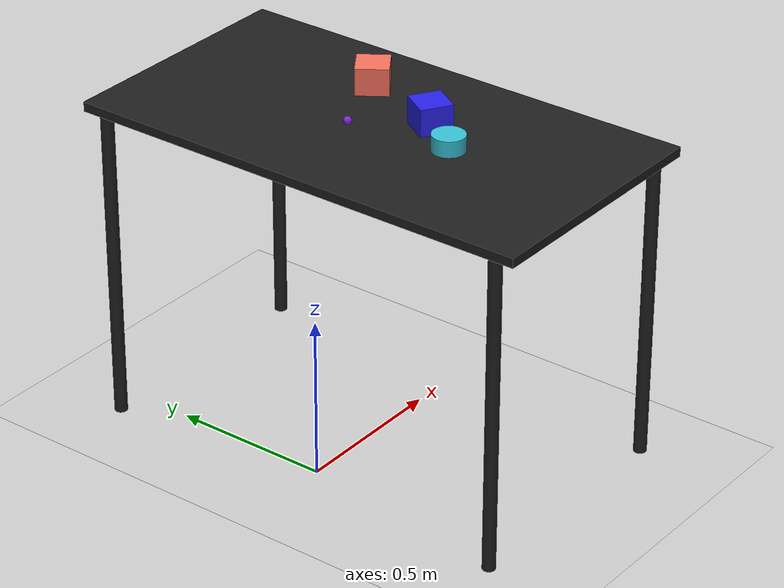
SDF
<?xml version="1.0" ?>
<sdf version="1.6">
  <world name="arm_world">
    <plugin filename="gz-sim-physics-system" name="gz::sim::systems::Physics">
      <engine>
        <filename>libgz-physics-bullet-featherstone-plugin.so</filename>
      </engine>
    </plugin>
    <plugin filename="gz-sim-user-commands-system" name="gz::sim::systems::UserCommands"/>
    <plugin filename="gz-sim-scene-broadcaster-system" name="gz::sim::systems::SceneBroadcaster"/>
    <plugin filename="gz-sim-sensors-system" name="gz::sim::systems::Sensors">
      <render_engine>ogre2</render_engine>
    </plugin>
    <gravity>0.0 0.0 -9.8</gravity>
    <scene>
      <shadows>false</shadows>
    </scene>
    <gui>
      <camera name="user_camera">
        <pose>0.75 -0.75 1.4 0 0.29 2.21</pose>
      </camera>
    </gui>
    <include>
      <uri>https://fuel.gazebosim.org/1.0/OpenRobotics/models/Sun</uri>
    </include>
    <model name="table">
      <static>true</static>
      <include>
        <uri>model://table</uri>
      </include>
      <pose>0.29 0 0 0 0 1.5708</pose>
    </model>
    <model name="ground_plane">
      <static>true</static>
      <link name="link">
        <collision name="collision">
          <geometry>
            <plane>
              <normal>0 0 1</normal>
            </plane>
          </geometry>
          <surface>
            <friction>
              <ode>
                <mu>1.0</mu>
                <mu2>1.0</mu2>
              </ode>
            </friction>
          </surface>
        </collision>
        <visual name="visual">
          <geometry>
            <plane>
              <normal>0 0 1</normal>
              <size>100 100</size>
            </plane>
          </geometry>
          <material>
            <ambient>0.8 0.8 0.8 1</ambient>
            <diffuse>0.8 0.8 0.8 1</diffuse>
            <specular>0.8 0.8 0.8 1</specular>
          </material>
        </visual>
      </link>
    </model>
    <model name="sphere_s_0">
      <pose>0.202 0.038 1.05 0 0 0.59</pose>
      <link name="sphere_s_0_link">
        <inertial>
          <mass>0.05</mass>
          <inertia>
            <ixx>2.04e-7</ixx>
            <iyy>2.04e-7</iyy>
            <izz>3.9e-8</izz>
            <ixy>0</ixy>
            <ixz>0</ixz>
            <iyz>0</iyz>
          </inertia>
        </inertial>
        <collision name="sphere_s_0_collision">
          <geometry>
            <sphere>
              <radius>0.0125</radius>
            </sphere>
          </geometry>
          <surface>
            <friction>
              <ode>
                <mu>0.8</mu>
                <mu2>0.8</mu2>
                <fdir1>0 0 1</fdir1>
                <slip1>0.001</slip1>
                <slip2>0.001</slip2>
              </ode>
              <torsional>
                <coefficient>0.1</coefficient>
                <surface_radius>0.015</surface_radius>
                <use_patch_radius>true</use_patch_radius>
              </torsional>
            </friction>
            <contact>
              <ode>
                <kp>1e5</kp>
                <kd>10</kd>
                <max_vel>0.1</max_vel>
                <min_depth>0.001</min_depth>
                <soft_cfm>0.01</soft_cfm>
                <soft_erp>0.2</soft_erp>
              </ode>
            </contact>
            <bounce>
              <restitution_coefficient>0.2</restitution_coefficient>
              <threshold>0.01</threshold>
            </bounce>
          </surface>
        </collision>
        <visual name="sphere_s_0_visual">
          <geometry>
            <sphere>
              <radius>0.0125</radius>
            </sphere>
          </geometry>
          <material>
            <ambient>0.48 0.14 0.8 1</ambient>
            <diffuse>0.48 0.14 0.8 1</diffuse>
          </material>
        </visual>
        <velocity_decay>
          <linear>1</linear>
          <angular>1</angular>
        </velocity_decay>
      </link>
    </model>
    <model name="cylinder_l_1">
      <pose>0.267 -0.264 1.05 0 0 5.56</pose>
      <link name="cylinder_l_1_link">
        <inertial>
          <mass>0.05</mass>
          <inertia>
            <ixx>2.04e-7</ixx>
            <iyy>2.04e-7</iyy>
            <izz>3.9e-8</izz>
            <ixy>0</ixy>
            <ixz>0</ixz>
            <iyz>0</iyz>
          </inertia>
        </inertial>
        <collision name="cylinder_l_1_collision">
          <geometry>
            <cylinder>
              <radius>0.05</radius>
              <length>0.05</length>
            </cylinder>
          </geometry>
          <surface>
            <friction>
              <ode>
                <mu>0.8</mu>
                <mu2>0.8</mu2>
                <fdir1>0 0 1</fdir1>
                <slip1>0.001</slip1>
                <slip2>0.001</slip2>
              </ode>
              <torsional>
                <coefficient>0.1</coefficient>
                <surface_radius>0.015</surface_radius>
                <use_patch_radius>true</use_patch_radius>
              </torsional>
            </friction>
            <contact>
              <ode>
                <kp>1e5</kp>
                <kd>10</kd>
                <max_vel>0.1</max_vel>
                <min_depth>0.001</min_depth>
                <soft_cfm>0.01</soft_cfm>
                <soft_erp>0.2</soft_erp>
              </ode>
            </contact>
            <bounce>
              <restitution_coefficient>0.2</restitution_coefficient>
              <threshold>0.01</threshold>
            </bounce>
          </surface>
        </collision>
        <visual name="cylinder_l_1_visual">
          <geometry>
            <cylinder>
              <radius>0.05</radius>
              <length>0.05</length>
            </cylinder>
          </geometry>
          <material>
            <ambient>0.21 0.76 0.84 1</ambient>
            <diffuse>0.21 0.76 0.84 1</diffuse>
          </material>
        </visual>
        <velocity_decay>
          <linear>1</linear>
          <angular>1</angular>
        </velocity_decay>
      </link>
    </model>
    <model name="cube_l_2">
      <pose>0.461 0.149 1.05 0 0 5.31</pose>
      <link name="cube_l_2_link">
        <inertial>
          <mass>0.05</mass>
          <inertia>
            <ixx>2.04e-7</ixx>
            <iyy>2.04e-7</iyy>
            <izz>3.9e-8</izz>
            <ixy>0</ixy>
            <ixz>0</ixz>
            <iyz>0</iyz>
          </inertia>
        </inertial>
        <collision name="cube_l_2_collision">
          <geometry>
            <box>
              <size>0.1 0.1 0.1</size>
            </box>
          </geometry>
          <surface>
            <friction>
              <ode>
                <mu>0.8</mu>
                <mu2>0.8</mu2>
                <fdir1>0 0 1</fdir1>
                <slip1>0.001</slip1>
                <slip2>0.001</slip2>
              </ode>
              <torsional>
                <coefficient>0.1</coefficient>
                <surface_radius>0.015</surface_radius>
                <use_patch_radius>true</use_patch_radius>
              </torsional>
            </friction>
            <contact>
              <ode>
                <kp>1e5</kp>
                <kd>10</kd>
                <max_vel>0.1</max_vel>
                <min_depth>0.001</min_depth>
                <soft_cfm>0.01</soft_cfm>
                <soft_erp>0.2</soft_erp>
              </ode>
            </contact>
            <bounce>
              <restitution_coefficient>0.2</restitution_coefficient>
              <threshold>0.01</threshold>
            </bounce>
          </surface>
        </collision>
        <visual name="cube_l_2_visual">
          <geometry>
            <box>
              <size>0.1 0.1 0.1</size>
            </box>
          </geometry>
          <material>
            <ambient>0.97 0.44 0.36 1</ambient>
            <diffuse>0.97 0.44 0.36 1</diffuse>
          </material>
        </visual>
        <velocity_decay>
          <linear>1</linear>
          <angular>1</angular>
        </velocity_decay>
      </link>
    </model>
    <model name="cube_l_3">
      <pose>0.363 -0.13 1.05 0 0 1.02</pose>
      <link name="cube_l_3_link">
        <inertial>
          <mass>0.05</mass>
          <inertia>
            <ixx>2.04e-7</ixx>
            <iyy>2.04e-7</iyy>
            <izz>3.9e-8</izz>
            <ixy>0</ixy>
            <ixz>0</ixz>
            <iyz>0</iyz>
          </inertia>
        </inertial>
        <collision name="cube_l_3_collision">
          <geometry>
            <box>
              <size>0.1 0.1 0.1</size>
            </box>
          </geometry>
          <surface>
            <friction>
              <ode>
                <mu>0.8</mu>
                <mu2>0.8</mu2>
                <fdir1>0 0 1</fdir1>
                <slip1>0.001</slip1>
                <slip2>0.001</slip2>
              </ode>
              <torsional>
                <coefficient>0.1</coefficient>
                <surface_radius>0.015</surface_radius>
                <use_patch_radius>true</use_patch_radius>
              </torsional>
            </friction>
            <contact>
              <ode>
                <kp>1e5</kp>
                <kd>10</kd>
                <max_vel>0.1</max_vel>
                <min_depth>0.001</min_depth>
                <soft_cfm>0.01</soft_cfm>
                <soft_erp>0.2</soft_erp>
              </ode>
            </contact>
            <bounce>
              <restitution_coefficient>0.2</restitution_coefficient>
              <threshold>0.01</threshold>
            </bounce>
          </surface>
        </collision>
        <visual name="cube_l_3_visual">
          <geometry>
            <box>
              <size>0.1 0.1 0.1</size>
            </box>
          </geometry>
          <material>
            <ambient>0.15 0.13 0.92 1</ambient>
            <diffuse>0.15 0.13 0.92 1</diffuse>
          </material>
        </visual>
        <velocity_decay>
          <linear>1</linear>
          <angular>1</angular>
        </velocity_decay>
      </link>
    </model>
    <model name="sphere_m_4">
      <pose>0.409 -0.099 1.05 0 0 4.91</pose>
      <link name="sphere_m_4_link">
        <inertial>
          <mass>0.05</mass>
          <inertia>
            <ixx>2.04e-7</ixx>
            <iyy>2.04e-7</iyy>
            <izz>3.9e-8</izz>
            <ixy>0</ixy>
            <ixz>0</ixz>
            <iyz>0</iyz>
          </inertia>
        </inertial>
        <collision name="sphere_m_4_collision">
          <geometry>
            <sphere>
              <radius>0.025</radius>
            </sphere>
          </geometry>
          <surface>
            <friction>
              <ode>
                <mu>0.8</mu>
                <mu2>0.8</mu2>
                <fdir1>0 0 1</fdir1>
                <slip1>0.001</slip1>
                <slip2>0.001</slip2>
              </ode>
              <torsional>
                <coefficient>0.1</coefficient>
                <surface_radius>0.015</surface_radius>
                <use_patch_radius>true</use_patch_radius>
              </torsional>
            </friction>
            <contact>
              <ode>
                <kp>1e5</kp>
                <kd>10</kd>
                <max_vel>0.1</max_vel>
                <min_depth>0.001</min_depth>
                <soft_cfm>0.01</soft_cfm>
                <soft_erp>0.2</soft_erp>
              </ode>
            </contact>
            <bounce>
              <restitution_coefficient>0.2</restitution_coefficient>
              <threshold>0.01</threshold>
            </bounce>
          </surface>
        </collision>
        <visual name="sphere_m_4_visual">
          <geometry>
            <sphere>
              <radius>0.025</radius>
            </sphere>
          </geometry>
          <material>
            <ambient>0.19 0.17 0.55 1</ambient>
            <diffuse>0.19 0.17 0.55 1</diffuse>
          </material>
        </visual>
        <velocity_decay>
          <linear>1</linear>
          <angular>1</angular>
        </velocity_decay>
      </link>
    </model>
  </world>
</sdf>

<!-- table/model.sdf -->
<sdf version="1.5">
  <model name="table">
    <static>true</static>
    <link name="link">
      <collision name="surface">
        <pose>0 0 1.0 0 0 0</pose>
        <geometry>
          <box>
            <size>1.5 0.8 0.03</size>
          </box>
        </geometry>
        <surface>
          <friction>
            <ode>
              <mu>0.6</mu>
              <mu2>0.6</mu2>
            </ode>
          </friction>
        </surface>
      </collision>
      <visual name="surface">
        <pose>0 0 1.0 0 0 0</pose>
        <geometry>
          <box>
            <size>1.5 0.8 0.03</size>
          </box>
        </geometry>
        <material>
          <script>
            <uri>file://media/materials/scripts/gazebo.material</uri>
            <name>Gazebo/Black</name>
          </script>
        </material>
      </visual>
      <collision name="front_left_leg">
        <pose>0.68 0.38 0.5 0 0 0</pose>
        <geometry>
          <cylinder>
            <radius>0.02</radius>
            <length>1.0</length>
          </cylinder>
        </geometry>
      </collision>
      <visual name="front_left_leg">
        <pose>0.68 0.38 0.5 0 0 0</pose>
        <geometry>
          <cylinder>
            <radius>0.02</radius>
            <length>1.0</length>
          </cylinder>
        </geometry>
        <material>
          <script>
            <uri>file://media/materials/scripts/gazebo.material</uri>
            <name>Gazebo/Black</name>
          </script>
        </material>
      </visual>
      <collision name="front_right_leg">
        <pose>0.68 -0.38 0.5 0 0 0</pose>
        <geometry>
          <cylinder>
            <radius>0.02</radius>
            <length>1.0</length>
          </cylinder>
        </geometry>
      </collision>
      <visual name="front_right_leg">
        <pose>0.68 -0.38 0.5 0 0 0</pose>
        <geometry>
          <cylinder>
            <radius>0.02</radius>
            <length>1.0</length>
          </cylinder>
        </geometry>
        <material>
          <script>
            <uri>file://media/materials/scripts/gazebo.material</uri>
            <name>Gazebo/Black</name>
          </script>
        </material>
      </visual>
      <collision name="back_right_leg">
        <pose>-0.68 -0.38 0.5 0 0 0</pose>
        <geometry>
          <cylinder>
            <radius>0.02</radius>
            <length>1.0</length>
          </cylinder>
        </geometry>
      </collision>
      <visual name="back_right_leg">
        <pose>-0.68 -0.38 0.5 0 0 0</pose>
        <geometry>
          <cylinder>
            <radius>0.02</radius>
            <length>1.0</length>
          </cylinder>
        </geometry>
        <material>
          <script>
            <uri>file://media/materials/scripts/gazebo.material</uri>
            <name>Gazebo/Black</name>
          </script>
        </material>
      </visual>
      <collision name="back_left_leg">
        <pose>-0.68 0.38 0.5 0 0 0</pose>
        <geometry>
          <cylinder>
            <radius>0.02</radius>
            <length>1.0</length>
          </cylinder>
        </geometry>
      </collision>
      <visual name="back_left_leg">
        <pose>-0.68 0.38 0.5 0 0 0</pose>
        <geometry>
          <cylinder>
            <radius>0.02</radius>
            <length>1.0</length>
          </cylinder>
        </geometry>
        <material>
          <script>
            <uri>file://media/materials/scripts/gazebo.material</uri>
            <name>Gazebo/Black</name>
          </script>
        </material>
      </visual>
    </link>
  </model>
</sdf>
